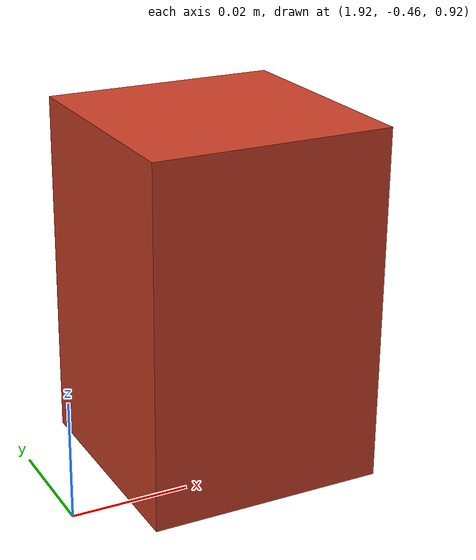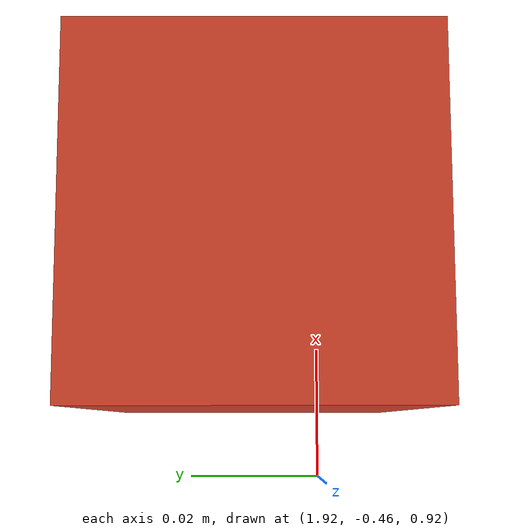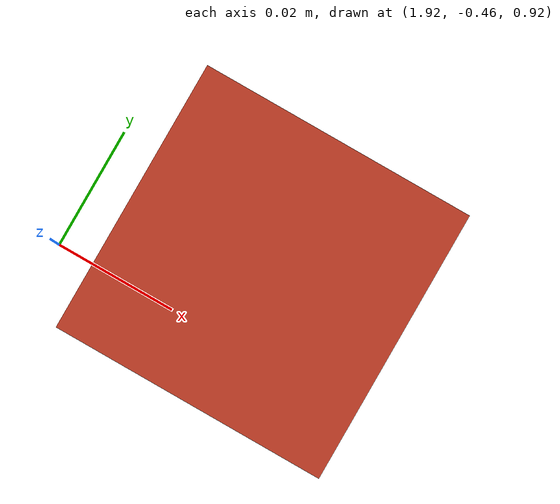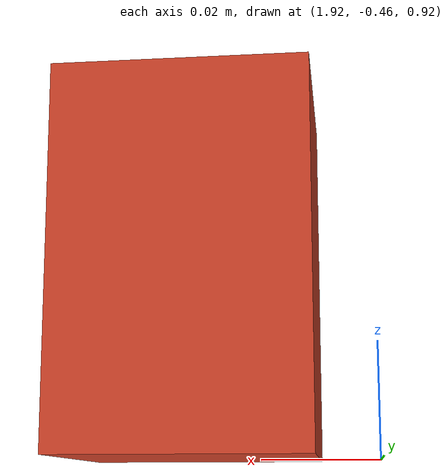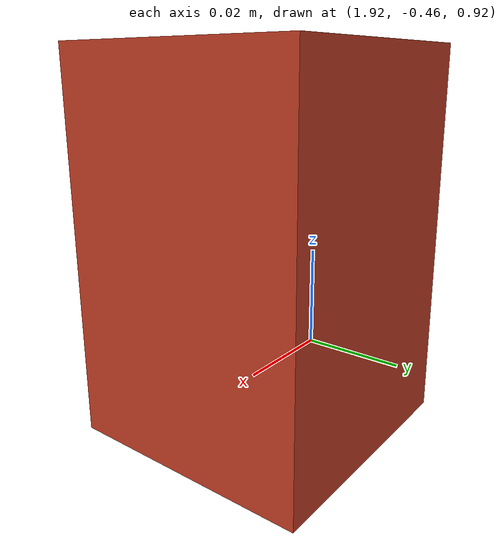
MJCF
<?xml version='1.0' encoding='utf-8'?>
<mujoco model="kitchen_objects">
  <worldbody>
    <body name="grasp_object_box" pos="1.95 -.45 .95">
      <freejoint name="grasp_object_box_joint" />
      <inertial pos="0 0 0" mass=".05" diaginertia=".000021666667 .000021666667 .000013333333" />
      <geom name="grasp_object_box_collision" type="box" size=".02 .02 .03" group="1" rgba=".8 .25 .15 1" contype="1" conaffinity="1" friction="1 .005 .0001" solref=".002 1" solimp=".99 .999 .0001" />
    </body>
  </worldbody>
  <contact>
    <pair geom1="grasp_object_box_collision" geom2="left_fr3v2_1_leftfinger_pad_0" condim="4" friction="1 1 .005 .0001 .0001" solref=".002 1" solimp=".99 .999 .0001" />
    <pair geom1="grasp_object_box_collision" geom2="left_fr3v2_1_leftfinger_pad_1" condim="4" friction="1 1 .005 .0001 .0001" solref=".002 1" solimp=".99 .999 .0001" />
    <pair geom1="grasp_object_box_collision" geom2="left_fr3v2_1_leftfinger_pad_2" condim="4" friction="1 1 .005 .0001 .0001" solref=".002 1" solimp=".99 .999 .0001" />
    <pair geom1="grasp_object_box_collision" geom2="left_fr3v2_1_leftfinger_pad_3" condim="4" friction="1 1 .005 .0001 .0001" solref=".002 1" solimp=".99 .999 .0001" />
    <pair geom1="grasp_object_box_collision" geom2="left_fr3v2_1_rightfinger_pad_0" condim="4" friction="1 1 .005 .0001 .0001" solref=".002 1" solimp=".99 .999 .0001" />
    <pair geom1="grasp_object_box_collision" geom2="left_fr3v2_1_rightfinger_pad_1" condim="4" friction="1 1 .005 .0001 .0001" solref=".002 1" solimp=".99 .999 .0001" />
    <pair geom1="grasp_object_box_collision" geom2="left_fr3v2_1_rightfinger_pad_2" condim="4" friction="1 1 .005 .0001 .0001" solref=".002 1" solimp=".99 .999 .0001" />
    <pair geom1="grasp_object_box_collision" geom2="left_fr3v2_1_rightfinger_pad_3" condim="4" friction="1 1 .005 .0001 .0001" solref=".002 1" solimp=".99 .999 .0001" />
    <pair geom1="grasp_object_box_collision" geom2="right_fr3v2_1_leftfinger_pad_0" condim="4" friction="1 1 .005 .0001 .0001" solref=".002 1" solimp=".99 .999 .0001" />
    <pair geom1="grasp_object_box_collision" geom2="right_fr3v2_1_leftfinger_pad_1" condim="4" friction="1 1 .005 .0001 .0001" solref=".002 1" solimp=".99 .999 .0001" />
    <pair geom1="grasp_object_box_collision" geom2="right_fr3v2_1_leftfinger_pad_2" condim="4" friction="1 1 .005 .0001 .0001" solref=".002 1" solimp=".99 .999 .0001" />
    <pair geom1="grasp_object_box_collision" geom2="right_fr3v2_1_leftfinger_pad_3" condim="4" friction="1 1 .005 .0001 .0001" solref=".002 1" solimp=".99 .999 .0001" />
    <pair geom1="grasp_object_box_collision" geom2="right_fr3v2_1_rightfinger_pad_0" condim="4" friction="1 1 .005 .0001 .0001" solref=".002 1" solimp=".99 .999 .0001" />
    <pair geom1="grasp_object_box_collision" geom2="right_fr3v2_1_rightfinger_pad_1" condim="4" friction="1 1 .005 .0001 .0001" solref=".002 1" solimp=".99 .999 .0001" />
    <pair geom1="grasp_object_box_collision" geom2="right_fr3v2_1_rightfinger_pad_2" condim="4" friction="1 1 .005 .0001 .0001" solref=".002 1" solimp=".99 .999 .0001" />
    <pair geom1="grasp_object_box_collision" geom2="right_fr3v2_1_rightfinger_pad_3" condim="4" friction="1 1 .005 .0001 .0001" solref=".002 1" solimp=".99 .999 .0001" />
  </contact>
</mujoco>
